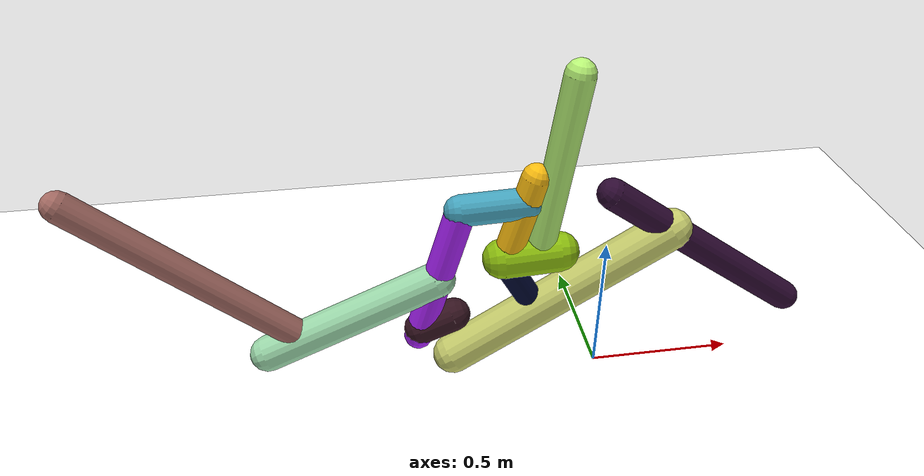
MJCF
<mujoco model="morphology">
  <option timestep="0.01"/>
  <default>
    <default class="/"/>
    <default class="0/"/>
    <default class="0/1/"/>
    <default class="0/1/2/"/>
    <default class="0/1/2/3/"/>
    <default class="0/1/2/3/4/"/>
    <default class="0/1/2/3/4/5/"/>
    <default class="0/1/2/3/4/5/6/"/>
    <default class="0/1/2/3/4/5/6/7/"/>
    <default class="0/1/2/3/4/5/6/8/"/>
    <default class="0/1/2/3/4/5/6/8/9/"/>
    <default class="0/1/2/3/10/"/>
  </default>
  <asset>
    <texture name="texplane" type="2d" builtin="checker" rgb1="0.10000000000000001 0.20000000000000001 0.29999999999999999" rgb2="0.20000000000000001 0.29999999999999999 0.40000000000000002" width="300" height="300"/>
    <material name="MatPlane" class="/" texture="texplane" texrepeat="20 20" specular="1" shininess="1" reflectance="0.5"/>
  </asset>
  <worldbody>
    <light name="//unnamed_light_0" class="/" directional="true" pos="0 0 1.5" dir="0 0 -1.3" cutoff="100" exponent="1" diffuse="1 1 1" specular="0.10000000000000001 0.10000000000000001 0.10000000000000001"/>
    <geom name="ground" class="/" type="plane" size="15 15 0.5" material="MatPlane" rgba="1 1 1 1"/>
    <site name="body" class="/" size="9.9999999999999995e-07 9.9999999999999995e-07 9.9999999999999995e-07" pos="0 0 0.70402780771255491"/>
    <body pos="0 0 0.70402780771255491" name="0/">
      <joint name="0/rootx/" class="/" type="slide" axis="1 0 0" limited="false" stiffness="0" armature="0" damping="0"/>
      <joint name="0/rootz/" class="/" type="slide" axis="0 0 1" limited="false" stiffness="0" armature="0" damping="0"/>
      <joint name="0/rooty/" class="/" type="hinge" axis="0 1 0" limited="false" stiffness="0" armature="0" damping="0"/>
      <geom name="0/geom" class="0/" type="capsule" contype="1" conaffinity="1" condim="3" size="0.05129332703260657" rgba="0.18287533129985589 0.043493896044068836 0.20061311123394887 1" friction="0.59999999999999998 0.10000000000000001 0.10000000000000001" fromto="0 0 0 0.68188570592817399 0 -0.49206125750149277"/>
      <site name="0/end0" class="0/" size="0.0050000000000000001" pos="0.68188570592817399 0 -0.49206125750149277"/>
      <site name="0/attach1" class="0/" size="9.9999999999999995e-07 9.9999999999999995e-07 9.9999999999999995e-07" pos="0.21706555397137364 0 -0.15663849310644293"/>
      <body pos="0.21706555397137364 0 -0.15663849310644293" name="0/1/">
        <geom name="0/1/geom" class="0/1/" type="capsule" contype="1" conaffinity="1" condim="3" size="0.069730949880404347" rgba="0.78162171569575167 0.80513562348248902 0.42580036680581834 1" friction="0.59999999999999998 0.10000000000000001 0.10000000000000001" fromto="0 0 0 -0.73194516724732739 0 -0.44738931971780421"/>
        <site name="0/1/end1" class="0/1/" size="0.0050000000000000001" pos="-0.73194516724732739 0 -0.44738931971780421"/>
        <site name="0/1/attach2" class="0/1/" size="9.9999999999999995e-07 9.9999999999999995e-07 9.9999999999999995e-07" pos="-0.44668224575712256 0 -0.27302709957202714"/>
        <body pos="-0.44668224575712256 0 -0.27302709957202714" name="0/1/2/">
          <joint name="0/1/2/joint/" class="0/1/" type="hinge" axis="0 1 0" limited="true" range="-62.601342265727283 62.601342265727283"/>
          <geom name="0/1/2/geom" class="0/1/2/" type="capsule" contype="1" conaffinity="1" condim="3" size="0.0437155615635288" rgba="0.0024391889443148296 0.029992627237940273 0.20179062970456441 1" friction="0.59999999999999998 0.10000000000000001 0.10000000000000001" fromto="0 0 0 -0.12495694475890318 0 0.22263228291646953"/>
          <site name="0/1/2/end2" class="0/1/2/" size="0.0050000000000000001" pos="-0.12495694475890318 0 0.22263228291646953"/>
          <site name="0/1/2/attach3" class="0/1/2/" size="9.9999999999999995e-07 9.9999999999999995e-07 9.9999999999999995e-07" pos="-0.1199300150524602 0 0.21367594328472389"/>
          <body pos="-0.1199300150524602 0 0.21367594328472389" name="0/1/2/3/">
            <joint name="0/1/2/3/joint/" class="0/1/2/" type="hinge" axis="0 1 0" limited="true" range="-32.150056207584271 32.150056207584271"/>
            <geom name="0/1/2/3/geom" class="0/1/2/3/" type="capsule" contype="1" conaffinity="1" condim="3" size="0.067581541472564968" rgba="0.55380518575444182 0.74625878443607141 0.053418414583455642 1" friction="0.59999999999999998 0.10000000000000001 0.10000000000000001" fromto="0 0 0 0.18766046725654073 0 0.0096513339476946847"/>
            <site name="0/1/2/3/end3" class="0/1/2/3/" size="0.0050000000000000001" pos="0.18766046725654073 0 0.0096513339476946847"/>
            <site name="0/1/2/3/attach4" class="0/1/2/3/" size="9.9999999999999995e-07 9.9999999999999995e-07 9.9999999999999995e-07" pos="0.0099150044971363805 0 0.00050992636272156845"/>
            <body pos="0.0099150044971363805 0 0.00050992636272156845" name="0/1/2/3/4/">
              <joint name="0/1/2/3/4/joint/" class="0/1/2/3/" type="hinge" axis="0 1 0" limited="true" range="-59.797813162922409 59.797813162922409"/>
              <geom name="0/1/2/3/4/geom" class="0/1/2/3/4/" type="capsule" contype="1" conaffinity="1" condim="3" size="0.047696509242028208" rgba="0.99193239735798255 0.74764589394886516 0.063434421459869883 1" friction="0.59999999999999998 0.10000000000000001 0.10000000000000001" fromto="0 0 0 0.08789031888193044 0 0.29652037654810792"/>
              <site name="0/1/2/3/4/end4" class="0/1/2/3/4/" size="0.0050000000000000001" pos="0.08789031888193044 0 0.29652037654810792"/>
              <site name="0/1/2/3/4/attach5" class="0/1/2/3/4/" size="9.9999999999999995e-07 9.9999999999999995e-07 9.9999999999999995e-07" pos="0.061251976959144111 0 0.20664914524477282"/>
              <body pos="0.061251976959144111 0 0.20664914524477282" name="0/1/2/3/4/5/">
                <geom name="0/1/2/3/4/5/geom" class="0/1/2/3/4/5/" type="capsule" contype="1" conaffinity="1" condim="3" size="0.05141293422051596" rgba="0.27071844091576058 0.64564763684704418 0.74861352400972569 1" friction="0.59999999999999998 0.10000000000000001 0.10000000000000001" fromto="0 0 0 -0.21294456658013383 0 -0.0069803455428156802"/>
                <site name="0/1/2/3/4/5/end5" class="0/1/2/3/4/5/" size="0.0050000000000000001" pos="-0.21294456658013383 0 -0.0069803455428156802"/>
                <site name="0/1/2/3/4/5/attach6" class="0/1/2/3/4/5/" size="9.9999999999999995e-07 9.9999999999999995e-07 9.9999999999999995e-07" pos="-0.20893118044773223 0 -0.0068487863185028803"/>
                <body pos="-0.20893118044773223 0 -0.0068487863185028803" name="0/1/2/3/4/5/6/">
                  <joint name="0/1/2/3/4/5/6/joint/" class="0/1/2/3/4/5/" type="hinge" axis="0 1 0" limited="true" range="-58.149601981348617 58.149601981348617"/>
                  <geom name="0/1/2/3/4/5/6/geom" class="0/1/2/3/4/5/6/" type="capsule" contype="1" conaffinity="1" condim="3" size="0.049465261266841795" rgba="0.68429941141042072 0.14310404736974336 0.99832617977833393 1" friction="0.59999999999999998 0.10000000000000001 0.10000000000000001" fromto="0 0 0 -0.14599328343459905 0 -0.48550267618161097"/>
                  <site name="0/1/2/3/4/5/6/end6" class="0/1/2/3/4/5/6/" size="0.0050000000000000001" pos="-0.14599328343459905 0 -0.48550267618161097"/>
                  <site name="0/1/2/3/4/5/6/attach7" class="0/1/2/3/4/5/6/" size="9.9999999999999995e-07 9.9999999999999995e-07 9.9999999999999995e-07" pos="-0.13786871279447005 0 -0.45848430454278"/>
                  <body pos="-0.13786871279447005 0 -0.45848430454278" name="0/1/2/3/4/5/6/7/">
                    <geom name="0/1/2/3/4/5/6/7/geom" class="0/1/2/3/4/5/6/7/" type="capsule" contype="1" conaffinity="1" condim="3" size="0.056417312744009934" rgba="0.20664922906087713 0.076276011104988384 0.12546836958213636 1" friction="0.59999999999999998 0.10000000000000001 0.10000000000000001" fromto="0 0 0 0.11320470141790218 0 0.044515903505084387"/>
                    <site name="0/1/2/3/4/5/6/7/end7" class="0/1/2/3/4/5/6/7/" size="0.0050000000000000001" pos="0.11320470141790218 0 0.044515903505084387"/>
                  </body>
                  <site name="0/1/2/3/4/5/6/attach8" class="0/1/2/3/4/5/6/" size="9.9999999999999995e-07 9.9999999999999995e-07 9.9999999999999995e-07" pos="-0.078610518774507879 0 -0.26142036361655968"/>
                  <body pos="-0.078610518774507879 0 -0.26142036361655968" name="0/1/2/3/4/5/6/8/">
                    <joint name="0/1/2/3/4/5/6/8/joint/" class="0/1/2/3/4/5/6/" type="hinge" axis="0 1 0" limited="true" range="-40.809607809376445 40.809607809376445"/>
                    <geom name="0/1/2/3/4/5/6/8/geom" class="0/1/2/3/4/5/6/8/" type="capsule" contype="1" conaffinity="1" condim="3" size="0.060835584425815076" rgba="0.61015517086500815 0.84825620508671284 0.66657299871717823 1" friction="0.59999999999999998 0.10000000000000001 0.10000000000000001" fromto="0 0 0 -0.57262777943742171 0 -0.24161448723719103"/>
                    <site name="0/1/2/3/4/5/6/8/end8" class="0/1/2/3/4/5/6/8/" size="0.0050000000000000001" pos="-0.57262777943742171 0 -0.24161448723719103"/>
                    <site name="0/1/2/3/4/5/6/8/attach9" class="0/1/2/3/4/5/6/8/" size="9.9999999999999995e-07 9.9999999999999995e-07 9.9999999999999995e-07" pos="-0.44763184420413682 0 -0.18887371935514019"/>
                    <body pos="-0.44763184420413682 0 -0.18887371935514019" name="0/1/2/3/4/5/6/8/9/">
                      <joint name="0/1/2/3/4/5/6/8/9/joint/" class="0/1/2/3/4/5/6/8/" type="hinge" axis="0 1 0" limited="true" range="-61.451360952446237 61.451360952446237"/>
                      <geom name="0/1/2/3/4/5/6/8/9/geom" class="0/1/2/3/4/5/6/8/9/" type="capsule" contype="1" conaffinity="1" condim="3" size="0.048255996154882339" rgba="0.63937355599334256 0.41556186539672246 0.38542550890460225 1" friction="0.59999999999999998 0.10000000000000001 0.10000000000000001" fromto="0 0 0 -0.6409210191391479 0 0.57960866592705029"/>
                      <site name="0/1/2/3/4/5/6/8/9/end9" class="0/1/2/3/4/5/6/8/9/" size="0.0050000000000000001" pos="-0.6409210191391479 0 0.57960866592705029"/>
                    </body>
                  </body>
                </body>
              </body>
            </body>
            <site name="0/1/2/3/attach10" class="0/1/2/3/" size="9.9999999999999995e-07 9.9999999999999995e-07 9.9999999999999995e-07" pos="0.12002560872611022 0 0.00617288898949308"/>
            <body pos="0.12002560872611022 0 0.00617288898949308" name="0/1/2/3/10/">
              <joint name="0/1/2/3/10/joint/" class="0/1/2/3/" type="hinge" axis="0 1 0" limited="true" range="-60.399857368994674 60.399857368994674"/>
              <geom name="0/1/2/3/10/geom" class="0/1/2/3/10/" type="capsule" contype="1" conaffinity="1" condim="3" size="0.048773561034507022" rgba="0.72886569408527391 0.96784154193048155 0.46438289712658187 1" friction="0.59999999999999998 0.10000000000000001 0.10000000000000001" fromto="0 0 0 0.09167795923546207 0 0.62696520761730756"/>
              <site name="0/1/2/3/10/end10" class="0/1/2/3/10/" size="0.0050000000000000001" pos="0.09167795923546207 0 0.62696520761730756"/>
            </body>
          </body>
        </body>
      </body>
      <camera name="0/side" class="0/" mode="trackcom" pos="0.40000000000000002 -4 0.20000000000000001" quat="0.70699999999999996 0.70699999999999996 0 0"/>
    </body>
  </worldbody>
  <actuator>
    <motor name="0/1/2/motor" class="0/1/2/" ctrllimited="true" ctrlrange="-1 1" gear="81" joint="0/1/2/joint/"/>
    <motor name="0/1/2/3/motor" class="0/1/2/3/" ctrllimited="true" ctrlrange="-1 1" gear="51" joint="0/1/2/3/joint/"/>
    <motor name="0/1/2/3/4/motor" class="0/1/2/3/4/" ctrllimited="true" ctrlrange="-1 1" gear="54" joint="0/1/2/3/4/joint/"/>
    <motor name="0/1/2/3/4/5/6/motor" class="0/1/2/3/4/5/6/" ctrllimited="true" ctrlrange="-1 1" gear="78" joint="0/1/2/3/4/5/6/joint/"/>
    <motor name="0/1/2/3/4/5/6/8/motor" class="0/1/2/3/4/5/6/8/" ctrllimited="true" ctrlrange="-1 1" gear="83" joint="0/1/2/3/4/5/6/8/joint/"/>
    <motor name="0/1/2/3/4/5/6/8/9/motor" class="0/1/2/3/4/5/6/8/9/" ctrllimited="true" ctrlrange="-1 1" gear="80" joint="0/1/2/3/4/5/6/8/9/joint/"/>
    <motor name="0/1/2/3/10/motor" class="0/1/2/3/10/" ctrllimited="true" ctrlrange="-1 1" gear="73" joint="0/1/2/3/10/joint/"/>
  </actuator>
  <sensor>
    <subtreelinvel name="velocity" body="0/"/>
  </sensor>
</mujoco>
